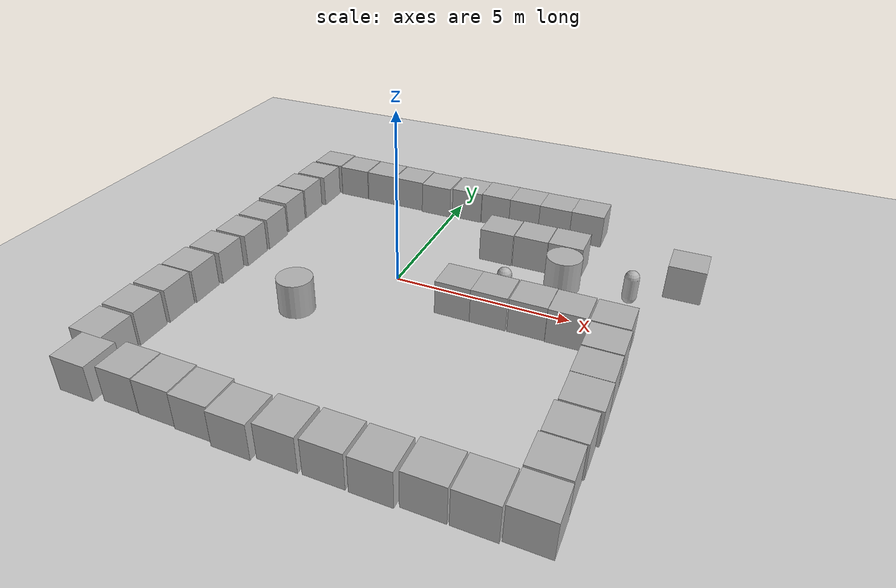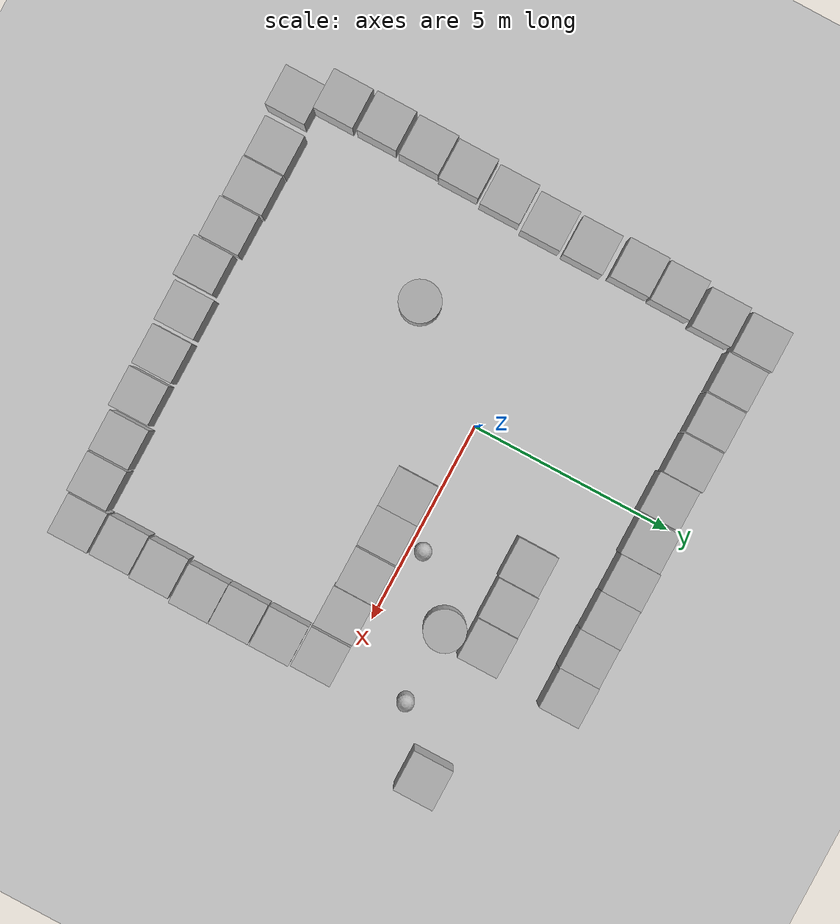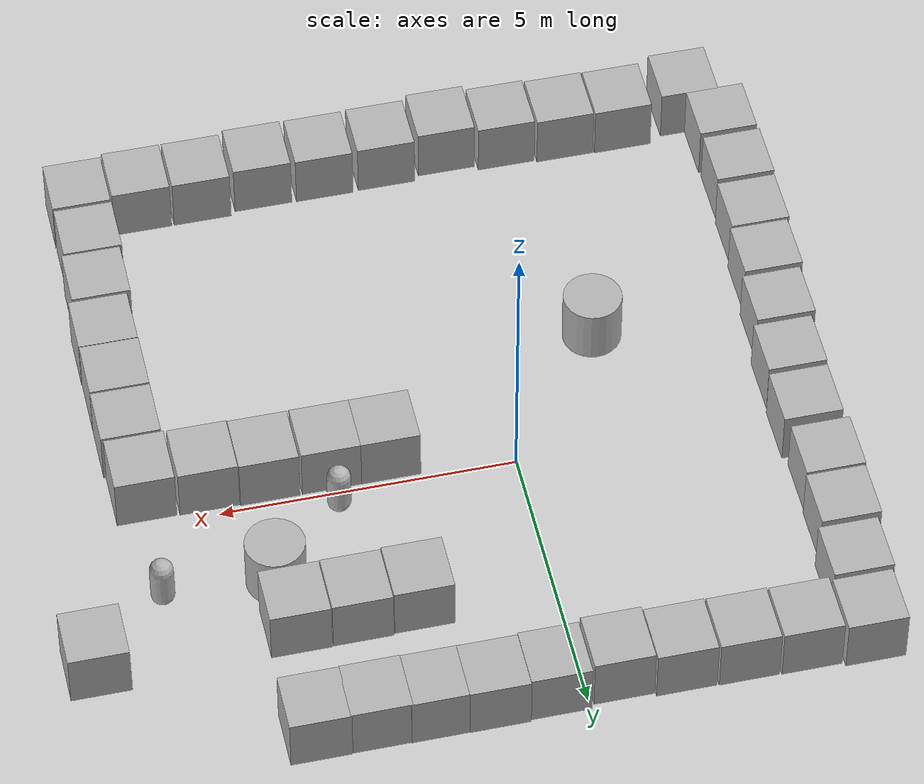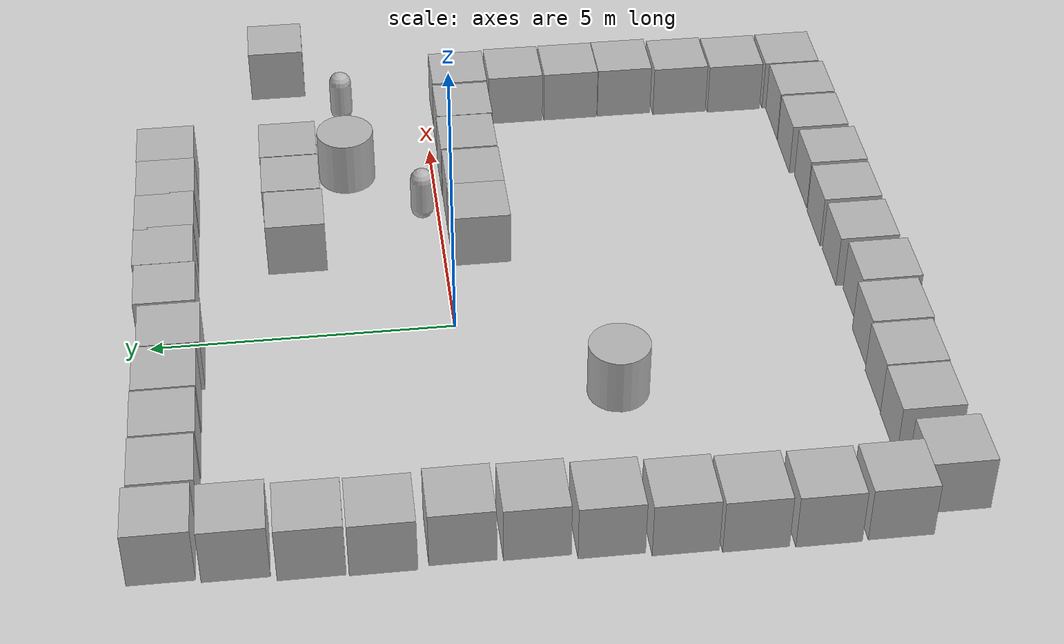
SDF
<sdf version='1.9'>
  <world name='empty'>
    <physics name='1ms' type='ignored'>
      <max_step_size>0.001</max_step_size>
      <real_time_factor>1</real_time_factor>
      <real_time_update_rate>1000</real_time_update_rate>
    </physics>
    <plugin name='gz::sim::systems::Physics' filename='ignition-gazebo-physics-system'/>
    <plugin name='gz::sim::systems::UserCommands' filename='ignition-gazebo-user-commands-system'/>
    <plugin name='gz::sim::systems::SceneBroadcaster' filename='ignition-gazebo-scene-broadcaster-system'/>
    <plugin name='gz::sim::systems::Contact' filename='ignition-gazebo-contact-system'/>
    <gravity>0 0 -9.8</gravity>
    <magnetic_field>6e-06 2.3e-05 -4.2e-05</magnetic_field>
    <atmosphere type='adiabatic'/>
    <scene>
      <ambient>0.4 0.4 0.4 1</ambient>
      <background>0.7 0.7 0.7 1</background>
      <shadows>true</shadows>
    </scene>
    <model name='ground_plane'>
      <static>true</static>
      <link name='link'>
        <collision name='collision'>
          <geometry>
            <plane>
              <normal>0 0 1</normal>
              <size>100 100</size>
            </plane>
          </geometry>
          <surface>
            <friction>
              <ode/>
            </friction>
            <bounce/>
            <contact/>
          </surface>
        </collision>
        <visual name='visual'>
          <geometry>
            <plane>
              <normal>0 0 1</normal>
              <size>100 100</size>
            </plane>
          </geometry>
          <material>
            <ambient>0.8 0.8 0.8 1</ambient>
            <diffuse>0.8 0.8 0.8 1</diffuse>
            <specular>0.8 0.8 0.8 1</specular>
          </material>
        </visual>
        <pose>0 0 0 0 -0 0</pose>
        <inertial>
          <pose>0 0 0 0 -0 0</pose>
          <mass>1</mass>
          <inertia>
            <ixx>1</ixx>
            <ixy>0</ixy>
            <ixz>0</ixz>
            <iyy>1</iyy>
            <iyz>0</iyz>
            <izz>1</izz>
          </inertia>
        </inertial>
        <enable_wind>false</enable_wind>
      </link>
      <pose>0 0 0 0 -0 0</pose>
      <self_collide>false</self_collide>
    </model>
    <model name='box'>
      <pose>4.25716 2.56515 0.5 0 -0 0</pose>
      <link name='box_link'>
        <inertial>
          <inertia>
            <ixx>0.16666</ixx>
            <ixy>0</ixy>
            <ixz>0</ixz>
            <iyy>0.16666</iyy>
            <iyz>0</iyz>
            <izz>0.16666</izz>
          </inertia>
          <mass>1</mass>
          <pose>0 0 0 0 -0 0</pose>
        </inertial>
        <collision name='box_collision'>
          <geometry>
            <box>
              <size>1 1 1</size>
            </box>
          </geometry>
          <surface>
            <friction>
              <ode/>
            </friction>
            <bounce/>
            <contact/>
          </surface>
        </collision>
        <visual name='box_visual'>
          <geometry>
            <box>
              <size>1 1 1</size>
            </box>
          </geometry>
          <material>
            <ambient>0.3 0.3 0.3 1</ambient>
            <diffuse>0.7 0.7 0.7 1</diffuse>
            <specular>1 1 1 1</specular>
          </material>
        </visual>
        <pose>0 0 0 0 -0 0</pose>
        <enable_wind>false</enable_wind>
      </link>
      <static>false</static>
      <self_collide>false</self_collide>
    </model>
    <model name='box_0'>
      <pose>2.22508 2.52242 0.5 0 -0 0</pose>
      <link name='box_link'>
        <inertial>
          <inertia>
            <ixx>0.16666</ixx>
            <ixy>0</ixy>
            <ixz>0</ixz>
            <iyy>0.16666</iyy>
            <iyz>0</iyz>
            <izz>0.16666</izz>
          </inertia>
          <mass>1</mass>
          <pose>0 0 0 0 -0 0</pose>
        </inertial>
        <collision name='box_collision'>
          <geometry>
            <box>
              <size>1 1 1</size>
            </box>
          </geometry>
          <surface>
            <friction>
              <ode/>
            </friction>
            <bounce/>
            <contact/>
          </surface>
        </collision>
        <visual name='box_visual'>
          <geometry>
            <box>
              <size>1 1 1</size>
            </box>
          </geometry>
          <material>
            <ambient>0.3 0.3 0.3 1</ambient>
            <diffuse>0.7 0.7 0.7 1</diffuse>
            <specular>1 1 1 1</specular>
          </material>
        </visual>
        <pose>0 0 0 0 -0 0</pose>
        <enable_wind>false</enable_wind>
      </link>
      <static>false</static>
      <self_collide>false</self_collide>
    </model>
    <model name='box_1'>
      <pose>3.24121 2.55344 0.5 0 -0 0</pose>
      <link name='box_link'>
        <inertial>
          <inertia>
            <ixx>0.16666</ixx>
            <ixy>0</ixy>
            <ixz>0</ixz>
            <iyy>0.16666</iyy>
            <iyz>0</iyz>
            <izz>0.16666</izz>
          </inertia>
          <mass>1</mass>
          <pose>0 0 0 0 -0 0</pose>
        </inertial>
        <collision name='box_collision'>
          <geometry>
            <box>
              <size>1 1 1</size>
            </box>
          </geometry>
          <surface>
            <friction>
              <ode/>
            </friction>
            <bounce/>
            <contact/>
          </surface>
        </collision>
        <visual name='box_visual'>
          <geometry>
            <box>
              <size>1 1 1</size>
            </box>
          </geometry>
          <material>
            <ambient>0.3 0.3 0.3 1</ambient>
            <diffuse>0.7 0.7 0.7 1</diffuse>
            <specular>1 1 1 1</specular>
          </material>
        </visual>
        <pose>0 0 0 0 -0 0</pose>
        <enable_wind>false</enable_wind>
      </link>
      <static>false</static>
      <self_collide>false</self_collide>
    </model>
    <model name='box_2'>
      <pose>4.13558 -0.610376 0.5 0 -0 0</pose>
      <link name='box_link'>
        <inertial>
          <inertia>
            <ixx>0.16666</ixx>
            <ixy>0</ixy>
            <ixz>0</ixz>
            <iyy>0.16666</iyy>
            <iyz>0</iyz>
            <izz>0.16666</izz>
          </inertia>
          <mass>1</mass>
          <pose>0 0 0 0 -0 0</pose>
        </inertial>
        <collision name='box_collision'>
          <geometry>
            <box>
              <size>1 1 1</size>
            </box>
          </geometry>
          <surface>
            <friction>
              <ode/>
            </friction>
            <bounce/>
            <contact/>
          </surface>
        </collision>
        <visual name='box_visual'>
          <geometry>
            <box>
              <size>1 1 1</size>
            </box>
          </geometry>
          <material>
            <ambient>0.3 0.3 0.3 1</ambient>
            <diffuse>0.7 0.7 0.7 1</diffuse>
            <specular>1 1 1 1</specular>
          </material>
        </visual>
        <pose>0 0 0 0 -0 0</pose>
        <enable_wind>false</enable_wind>
      </link>
      <static>false</static>
      <self_collide>false</self_collide>
    </model>
    <model name='box_3'>
      <pose>5.14532 -0.630315 0.5 0 -0 0</pose>
      <link name='box_link'>
        <inertial>
          <inertia>
            <ixx>0.16666</ixx>
            <ixy>0</ixy>
            <ixz>0</ixz>
            <iyy>0.16666</iyy>
            <iyz>0</iyz>
            <izz>0.16666</izz>
          </inertia>
          <mass>1</mass>
          <pose>0 0 0 0 -0 0</pose>
        </inertial>
        <collision name='box_collision'>
          <geometry>
            <box>
              <size>1 1 1</size>
            </box>
          </geometry>
          <surface>
            <friction>
              <ode/>
            </friction>
            <bounce/>
            <contact/>
          </surface>
        </collision>
        <visual name='box_visual'>
          <geometry>
            <box>
              <size>1 1 1</size>
            </box>
          </geometry>
          <material>
            <ambient>0.3 0.3 0.3 1</ambient>
            <diffuse>0.7 0.7 0.7 1</diffuse>
            <specular>1 1 1 1</specular>
          </material>
        </visual>
        <pose>0 0 0 0 -0 0</pose>
        <enable_wind>false</enable_wind>
      </link>
      <static>false</static>
      <self_collide>false</self_collide>
    </model>
    <model name='box_4'>
      <pose>6.19145 -0.640033 0.5 0 -0 0</pose>
      <link name='box_link'>
        <inertial>
          <inertia>
            <ixx>0.16666</ixx>
            <ixy>0</ixy>
            <ixz>0</ixz>
            <iyy>0.16666</iyy>
            <iyz>0</iyz>
            <izz>0.16666</izz>
          </inertia>
          <mass>1</mass>
          <pose>0 0 0 0 -0 0</pose>
        </inertial>
        <collision name='box_collision'>
          <geometry>
            <box>
              <size>1 1 1</size>
            </box>
          </geometry>
          <surface>
            <friction>
              <ode/>
            </friction>
            <bounce/>
            <contact/>
          </surface>
        </collision>
        <visual name='box_visual'>
          <geometry>
            <box>
              <size>1 1 1</size>
            </box>
          </geometry>
          <material>
            <ambient>0.3 0.3 0.3 1</ambient>
            <diffuse>0.7 0.7 0.7 1</diffuse>
            <specular>1 1 1 1</specular>
          </material>
        </visual>
        <pose>0 0 0 0 -0 0</pose>
        <enable_wind>false</enable_wind>
      </link>
      <static>false</static>
      <self_collide>false</self_collide>
    </model>
    <model name='box_5'>
      <pose>6.22858 -1.6771 0.5 0 -0 0</pose>
      <link name='box_link'>
        <inertial>
          <inertia>
            <ixx>0.16666</ixx>
            <ixy>0</ixy>
            <ixz>0</ixz>
            <iyy>0.16666</iyy>
            <iyz>0</iyz>
            <izz>0.16666</izz>
          </inertia>
          <mass>1</mass>
          <pose>0 0 0 0 -0 0</pose>
        </inertial>
        <collision name='box_collision'>
          <geometry>
            <box>
              <size>1 1 1</size>
            </box>
          </geometry>
          <surface>
            <friction>
              <ode/>
            </friction>
            <bounce/>
            <contact/>
          </surface>
        </collision>
        <visual name='box_visual'>
          <geometry>
            <box>
              <size>1 1 1</size>
            </box>
          </geometry>
          <material>
            <ambient>0.3 0.3 0.3 1</ambient>
            <diffuse>0.7 0.7 0.7 1</diffuse>
            <specular>1 1 1 1</specular>
          </material>
        </visual>
        <pose>0 0 0 0 -0 0</pose>
        <enable_wind>false</enable_wind>
      </link>
      <static>false</static>
      <self_collide>false</self_collide>
    </model>
    <model name='box_6'>
      <pose>6.22858 -2.70771 0.5 0 -0 0</pose>
      <link name='box_link'>
        <inertial>
          <inertia>
            <ixx>0.16666</ixx>
            <ixy>0</ixy>
            <ixz>0</ixz>
            <iyy>0.16666</iyy>
            <iyz>0</iyz>
            <izz>0.16666</izz>
          </inertia>
          <mass>1</mass>
          <pose>0 0 0 0 -0 0</pose>
        </inertial>
        <collision name='box_collision'>
          <geometry>
            <box>
              <size>1 1 1</size>
            </box>
          </geometry>
          <surface>
            <friction>
              <ode/>
            </friction>
            <bounce/>
            <contact/>
          </surface>
        </collision>
        <visual name='box_visual'>
          <geometry>
            <box>
              <size>1 1 1</size>
            </box>
          </geometry>
          <material>
            <ambient>0.3 0.3 0.3 1</ambient>
            <diffuse>0.7 0.7 0.7 1</diffuse>
            <specular>1 1 1 1</specular>
          </material>
        </visual>
        <pose>0 0 0 0 -0 0</pose>
        <enable_wind>false</enable_wind>
      </link>
      <static>false</static>
      <self_collide>false</self_collide>
    </model>
    <model name='box_7'>
      <pose>6.23565 -3.7182 0.5 0 -0 0</pose>
      <link name='box_link'>
        <inertial>
          <inertia>
            <ixx>0.16666</ixx>
            <ixy>0</ixy>
            <ixz>0</ixz>
            <iyy>0.16666</iyy>
            <iyz>0</iyz>
            <izz>0.16666</izz>
          </inertia>
          <mass>1</mass>
          <pose>0 0 0 0 -0 0</pose>
        </inertial>
        <collision name='box_collision'>
          <geometry>
            <box>
              <size>1 1 1</size>
            </box>
          </geometry>
          <surface>
            <friction>
              <ode/>
            </friction>
            <bounce/>
            <contact/>
          </surface>
        </collision>
        <visual name='box_visual'>
          <geometry>
            <box>
              <size>1 1 1</size>
            </box>
          </geometry>
          <material>
            <ambient>0.3 0.3 0.3 1</ambient>
            <diffuse>0.7 0.7 0.7 1</diffuse>
            <specular>1 1 1 1</specular>
          </material>
        </visual>
        <pose>0 0 0 0 -0 0</pose>
        <enable_wind>false</enable_wind>
      </link>
      <static>false</static>
      <self_collide>false</self_collide>
    </model>
    <model name='box_8'>
      <pose>6.1657 -4.7642 0.5 0 -0 0</pose>
      <link name='box_link'>
        <inertial>
          <inertia>
            <ixx>0.16666</ixx>
            <ixy>0</ixy>
            <ixz>0</ixz>
            <iyy>0.16666</iyy>
            <iyz>0</iyz>
            <izz>0.16666</izz>
          </inertia>
          <mass>1</mass>
          <pose>0 0 0 0 -0 0</pose>
        </inertial>
        <collision name='box_collision'>
          <geometry>
            <box>
              <size>1 1 1</size>
            </box>
          </geometry>
          <surface>
            <friction>
              <ode/>
            </friction>
            <bounce/>
            <contact/>
          </surface>
        </collision>
        <visual name='box_visual'>
          <geometry>
            <box>
              <size>1 1 1</size>
            </box>
          </geometry>
          <material>
            <ambient>0.3 0.3 0.3 1</ambient>
            <diffuse>0.7 0.7 0.7 1</diffuse>
            <specular>1 1 1 1</specular>
          </material>
        </visual>
        <pose>0 0 0 0 -0 0</pose>
        <enable_wind>false</enable_wind>
      </link>
      <static>false</static>
      <self_collide>false</self_collide>
    </model>
    <model name='box_9'>
      <pose>4.37528 4.70751 0.5 0 -0 0</pose>
      <link name='box_link'>
        <inertial>
          <inertia>
            <ixx>0.16666</ixx>
            <ixy>0</ixy>
            <ixz>0</ixz>
            <iyy>0.16666</iyy>
            <iyz>0</iyz>
            <izz>0.16666</izz>
          </inertia>
          <mass>1</mass>
          <pose>0 0 0 0 -0 0</pose>
        </inertial>
        <collision name='box_collision'>
          <geometry>
            <box>
              <size>1 1 1</size>
            </box>
          </geometry>
          <surface>
            <friction>
              <ode/>
            </friction>
            <bounce/>
            <contact/>
          </surface>
        </collision>
        <visual name='box_visual'>
          <geometry>
            <box>
              <size>1 1 1</size>
            </box>
          </geometry>
          <material>
            <ambient>0.3 0.3 0.3 1</ambient>
            <diffuse>0.7 0.7 0.7 1</diffuse>
            <specular>1 1 1 1</specular>
          </material>
        </visual>
        <pose>0 0 0 0 -0 0</pose>
        <enable_wind>false</enable_wind>
      </link>
      <static>false</static>
      <self_collide>false</self_collide>
    </model>
    <model name='box_10'>
      <pose>3.38964 4.69584 0.5 0 -0 0</pose>
      <link name='box_link'>
        <inertial>
          <inertia>
            <ixx>0.16666</ixx>
            <ixy>0</ixy>
            <ixz>0</ixz>
            <iyy>0.16666</iyy>
            <iyz>0</iyz>
            <izz>0.16666</izz>
          </inertia>
          <mass>1</mass>
          <pose>0 0 0 0 -0 0</pose>
        </inertial>
        <collision name='box_collision'>
          <geometry>
            <box>
              <size>1 1 1</size>
            </box>
          </geometry>
          <surface>
            <friction>
              <ode/>
            </friction>
            <bounce/>
            <contact/>
          </surface>
        </collision>
        <visual name='box_visual'>
          <geometry>
            <box>
              <size>1 1 1</size>
            </box>
          </geometry>
          <material>
            <ambient>0.3 0.3 0.3 1</ambient>
            <diffuse>0.7 0.7 0.7 1</diffuse>
            <specular>1 1 1 1</specular>
          </material>
        </visual>
        <pose>0 0 0 0 -0 0</pose>
        <enable_wind>false</enable_wind>
      </link>
      <static>false</static>
      <self_collide>false</self_collide>
    </model>
    <model name='box_11'>
      <pose>2.41973 4.70516 0.5 0 -0 0</pose>
      <link name='box_link'>
        <inertial>
          <inertia>
            <ixx>0.16666</ixx>
            <ixy>0</ixy>
            <ixz>0</ixz>
            <iyy>0.16666</iyy>
            <iyz>0</iyz>
            <izz>0.16666</izz>
          </inertia>
          <mass>1</mass>
          <pose>0 0 0 0 -0 0</pose>
        </inertial>
        <collision name='box_collision'>
          <geometry>
            <box>
              <size>1 1 1</size>
            </box>
          </geometry>
          <surface>
            <friction>
              <ode/>
            </friction>
            <bounce/>
            <contact/>
          </surface>
        </collision>
        <visual name='box_visual'>
          <geometry>
            <box>
              <size>1 1 1</size>
            </box>
          </geometry>
          <material>
            <ambient>0.3 0.3 0.3 1</ambient>
            <diffuse>0.7 0.7 0.7 1</diffuse>
            <specular>1 1 1 1</specular>
          </material>
        </visual>
        <pose>0 0 0 0 -0 0</pose>
        <enable_wind>false</enable_wind>
      </link>
      <static>false</static>
      <self_collide>false</self_collide>
    </model>
    <model name='box_12'>
      <pose>1.47803 4.71205 0.5 0 -0 0</pose>
      <link name='box_link'>
        <inertial>
          <inertia>
            <ixx>0.16666</ixx>
            <ixy>0</ixy>
            <ixz>0</ixz>
            <iyy>0.16666</iyy>
            <iyz>0</iyz>
            <izz>0.16666</izz>
          </inertia>
          <mass>1</mass>
          <pose>0 0 0 0 -0 0</pose>
        </inertial>
        <collision name='box_collision'>
          <geometry>
            <box>
              <size>1 1 1</size>
            </box>
          </geometry>
          <surface>
            <friction>
              <ode/>
            </friction>
            <bounce/>
            <contact/>
          </surface>
        </collision>
        <visual name='box_visual'>
          <geometry>
            <box>
              <size>1 1 1</size>
            </box>
          </geometry>
          <material>
            <ambient>0.3 0.3 0.3 1</ambient>
            <diffuse>0.7 0.7 0.7 1</diffuse>
            <specular>1 1 1 1</specular>
          </material>
        </visual>
        <pose>0 0 0 0 -0 0</pose>
        <enable_wind>false</enable_wind>
      </link>
      <static>false</static>
      <self_collide>false</self_collide>
    </model>
    <model name='box_13'>
      <pose>0.474826 4.68056 0.5 0 -0 0</pose>
      <link name='box_link'>
        <inertial>
          <inertia>
            <ixx>0.16666</ixx>
            <ixy>0</ixy>
            <ixz>0</ixz>
            <iyy>0.16666</iyy>
            <iyz>0</iyz>
            <izz>0.16666</izz>
          </inertia>
          <mass>1</mass>
          <pose>0 0 0 0 -0 0</pose>
        </inertial>
        <collision name='box_collision'>
          <geometry>
            <box>
              <size>1 1 1</size>
            </box>
          </geometry>
          <surface>
            <friction>
              <ode/>
            </friction>
            <bounce/>
            <contact/>
          </surface>
        </collision>
        <visual name='box_visual'>
          <geometry>
            <box>
              <size>1 1 1</size>
            </box>
          </geometry>
          <material>
            <ambient>0.3 0.3 0.3 1</ambient>
            <diffuse>0.7 0.7 0.7 1</diffuse>
            <specular>1 1 1 1</specular>
          </material>
        </visual>
        <pose>0 0 0 0 -0 0</pose>
        <enable_wind>false</enable_wind>
      </link>
      <static>false</static>
      <self_collide>false</self_collide>
    </model>
    <model name='box_14'>
      <pose>-0.571616 4.60503 0.5 0 -0 0</pose>
      <link name='box_link'>
        <inertial>
          <inertia>
            <ixx>0.16666</ixx>
            <ixy>0</ixy>
            <ixz>0</ixz>
            <iyy>0.16666</iyy>
            <iyz>0</iyz>
            <izz>0.16666</izz>
          </inertia>
          <mass>1</mass>
          <pose>0 0 0 0 -0 0</pose>
        </inertial>
        <collision name='box_collision'>
          <geometry>
            <box>
              <size>1 1 1</size>
            </box>
          </geometry>
          <surface>
            <friction>
              <ode/>
            </friction>
            <bounce/>
            <contact/>
          </surface>
        </collision>
        <visual name='box_visual'>
          <geometry>
            <box>
              <size>1 1 1</size>
            </box>
          </geometry>
          <material>
            <ambient>0.3 0.3 0.3 1</ambient>
            <diffuse>0.7 0.7 0.7 1</diffuse>
            <specular>1 1 1 1</specular>
          </material>
        </visual>
        <pose>0 0 0 0 -0 0</pose>
        <enable_wind>false</enable_wind>
      </link>
      <static>false</static>
      <self_collide>false</self_collide>
    </model>
    <model name='box_15'>
      <pose>-1.58468 4.66608 0.5 0 -0 0</pose>
      <link name='box_link'>
        <inertial>
          <inertia>
            <ixx>0.16666</ixx>
            <ixy>0</ixy>
            <ixz>0</ixz>
            <iyy>0.16666</iyy>
            <iyz>0</iyz>
            <izz>0.16666</izz>
          </inertia>
          <mass>1</mass>
          <pose>0 0 0 0 -0 0</pose>
        </inertial>
        <collision name='box_collision'>
          <geometry>
            <box>
              <size>1 1 1</size>
            </box>
          </geometry>
          <surface>
            <friction>
              <ode/>
            </friction>
            <bounce/>
            <contact/>
          </surface>
        </collision>
        <visual name='box_visual'>
          <geometry>
            <box>
              <size>1 1 1</size>
            </box>
          </geometry>
          <material>
            <ambient>0.3 0.3 0.3 1</ambient>
            <diffuse>0.7 0.7 0.7 1</diffuse>
            <specular>1 1 1 1</specular>
          </material>
        </visual>
        <pose>0 0 0 0 -0 0</pose>
        <enable_wind>false</enable_wind>
      </link>
      <static>false</static>
      <self_collide>false</self_collide>
    </model>
    <model name='box_16'>
      <pose>-2.61521 4.67735 0.5 0 -0 0</pose>
      <link name='box_link'>
        <inertial>
          <inertia>
            <ixx>0.16666</ixx>
            <ixy>0</ixy>
            <ixz>0</ixz>
            <iyy>0.16666</iyy>
            <iyz>0</iyz>
            <izz>0.16666</izz>
          </inertia>
          <mass>1</mass>
          <pose>0 0 0 0 -0 0</pose>
        </inertial>
        <collision name='box_collision'>
          <geometry>
            <box>
              <size>1 1 1</size>
            </box>
          </geometry>
          <surface>
            <friction>
              <ode/>
            </friction>
            <bounce/>
            <contact/>
          </surface>
        </collision>
        <visual name='box_visual'>
          <geometry>
            <box>
              <size>1 1 1</size>
            </box>
          </geometry>
          <material>
            <ambient>0.3 0.3 0.3 1</ambient>
            <diffuse>0.7 0.7 0.7 1</diffuse>
            <specular>1 1 1 1</specular>
          </material>
        </visual>
        <pose>0 0 0 0 -0 0</pose>
        <enable_wind>false</enable_wind>
      </link>
      <static>false</static>
      <self_collide>false</self_collide>
    </model>
    <model name='box_17'>
      <pose>-3.64818 4.6887 0.5 0 -0 0</pose>
      <link name='box_link'>
        <inertial>
          <inertia>
            <ixx>0.16666</ixx>
            <ixy>0</ixy>
            <ixz>0</ixz>
            <iyy>0.16666</iyy>
            <iyz>0</iyz>
            <izz>0.16666</izz>
          </inertia>
          <mass>1</mass>
          <pose>0 0 0 0 -0 0</pose>
        </inertial>
        <collision name='box_collision'>
          <geometry>
            <box>
              <size>1 1 1</size>
            </box>
          </geometry>
          <surface>
            <friction>
              <ode/>
            </friction>
            <bounce/>
            <contact/>
          </surface>
        </collision>
        <visual name='box_visual'>
          <geometry>
            <box>
              <size>1 1 1</size>
            </box>
          </geometry>
          <material>
            <ambient>0.3 0.3 0.3 1</ambient>
            <diffuse>0.7 0.7 0.7 1</diffuse>
            <specular>1 1 1 1</specular>
          </material>
        </visual>
        <pose>0 0 0 0 -0 0</pose>
        <enable_wind>false</enable_wind>
      </link>
      <static>false</static>
      <self_collide>false</self_collide>
    </model>
    <model name='box_18'>
      <pose>-4.69033 4.75286 0.5 0 -0 0</pose>
      <link name='box_link'>
        <inertial>
          <inertia>
            <ixx>0.16666</ixx>
            <ixy>0</ixy>
            <ixz>0</ixz>
            <iyy>0.16666</iyy>
            <iyz>0</iyz>
            <izz>0.16666</izz>
          </inertia>
          <mass>1</mass>
          <pose>0 0 0 0 -0 0</pose>
        </inertial>
        <collision name='box_collision'>
          <geometry>
            <box>
              <size>1 1 1</size>
            </box>
          </geometry>
          <surface>
            <friction>
              <ode/>
            </friction>
            <bounce/>
            <contact/>
          </surface>
        </collision>
        <visual name='box_visual'>
          <geometry>
            <box>
              <size>1 1 1</size>
            </box>
          </geometry>
          <material>
            <ambient>0.3 0.3 0.3 1</ambient>
            <diffuse>0.7 0.7 0.7 1</diffuse>
            <specular>1 1 1 1</specular>
          </material>
        </visual>
        <pose>0 0 0 0 -0 0</pose>
        <enable_wind>false</enable_wind>
      </link>
      <static>false</static>
      <self_collide>false</self_collide>
    </model>
    <model name='box_19'>
      <pose>-4.74822 3.67565 0.5 0 -0 0</pose>
      <link name='box_link'>
        <inertial>
          <inertia>
            <ixx>0.16666</ixx>
            <ixy>0</ixy>
            <ixz>0</ixz>
            <iyy>0.16666</iyy>
            <iyz>0</iyz>
            <izz>0.16666</izz>
          </inertia>
          <mass>1</mass>
          <pose>0 0 0 0 -0 0</pose>
        </inertial>
        <collision name='box_collision'>
          <geometry>
            <box>
              <size>1 1 1</size>
            </box>
          </geometry>
          <surface>
            <friction>
              <ode/>
            </friction>
            <bounce/>
            <contact/>
          </surface>
        </collision>
        <visual name='box_visual'>
          <geometry>
            <box>
              <size>1 1 1</size>
            </box>
          </geometry>
          <material>
            <ambient>0.3 0.3 0.3 1</ambient>
            <diffuse>0.7 0.7 0.7 1</diffuse>
            <specular>1 1 1 1</specular>
          </material>
        </visual>
        <pose>0 0 0 0 -0 0</pose>
        <enable_wind>false</enable_wind>
      </link>
      <static>false</static>
      <self_collide>false</self_collide>
    </model>
    <model name='box_20'>
      <pose>-4.84161 2.58379 0.5 0 -0 0</pose>
      <link name='box_link'>
        <inertial>
          <inertia>
            <ixx>0.16666</ixx>
            <ixy>0</ixy>
            <ixz>0</ixz>
            <iyy>0.16666</iyy>
            <iyz>0</iyz>
            <izz>0.16666</izz>
          </inertia>
          <mass>1</mass>
          <pose>0 0 0 0 -0 0</pose>
        </inertial>
        <collision name='box_collision'>
          <geometry>
            <box>
              <size>1 1 1</size>
            </box>
          </geometry>
          <surface>
            <friction>
              <ode/>
            </friction>
            <bounce/>
            <contact/>
          </surface>
        </collision>
        <visual name='box_visual'>
          <geometry>
            <box>
              <size>1 1 1</size>
            </box>
          </geometry>
          <material>
            <ambient>0.3 0.3 0.3 1</ambient>
            <diffuse>0.7 0.7 0.7 1</diffuse>
            <specular>1 1 1 1</specular>
          </material>
        </visual>
        <pose>0 0 0 0 -0 0</pose>
        <enable_wind>false</enable_wind>
      </link>
      <static>false</static>
      <self_collide>false</self_collide>
    </model>
    <model name='box_21'>
      <pose>-4.86638 1.5426 0.5 0 -0 0</pose>
      <link name='box_link'>
        <inertial>
          <inertia>
            <ixx>0.16666</ixx>
            <ixy>0</ixy>
            <ixz>0</ixz>
            <iyy>0.16666</iyy>
            <iyz>0</iyz>
            <izz>0.16666</izz>
          </inertia>
          <mass>1</mass>
          <pose>0 0 0 0 -0 0</pose>
        </inertial>
        <collision name='box_collision'>
          <geometry>
            <box>
              <size>1 1 1</size>
            </box>
          </geometry>
          <surface>
            <friction>
              <ode/>
            </friction>
            <bounce/>
            <contact/>
          </surface>
        </collision>
        <visual name='box_visual'>
          <geometry>
            <box>
              <size>1 1 1</size>
            </box>
          </geometry>
          <material>
            <ambient>0.3 0.3 0.3 1</ambient>
            <diffuse>0.7 0.7 0.7 1</diffuse>
            <specular>1 1 1 1</specular>
          </material>
        </visual>
        <pose>0 0 0 0 -0 0</pose>
        <enable_wind>false</enable_wind>
      </link>
      <static>false</static>
      <self_collide>false</self_collide>
    </model>
    <model name='box_22'>
      <pose>-4.80389 0.380437 0.5 0 -0 0</pose>
      <link name='box_link'>
        <inertial>
          <inertia>
            <ixx>0.16666</ixx>
            <ixy>0</ixy>
            <ixz>0</ixz>
            <iyy>0.16666</iyy>
            <iyz>0</iyz>
            <izz>0.16666</izz>
          </inertia>
          <mass>1</mass>
          <pose>0 0 0 0 -0 0</pose>
        </inertial>
        <collision name='box_collision'>
          <geometry>
            <box>
              <size>1 1 1</size>
            </box>
          </geometry>
          <surface>
            <friction>
              <ode/>
            </friction>
            <bounce/>
            <contact/>
          </surface>
        </collision>
        <visual name='box_visual'>
          <geometry>
            <box>
              <size>1 1 1</size>
            </box>
          </geometry>
          <material>
            <ambient>0.3 0.3 0.3 1</ambient>
            <diffuse>0.7 0.7 0.7 1</diffuse>
            <specular>1 1 1 1</specular>
          </material>
        </visual>
        <pose>0 0 0 0 -0 0</pose>
        <enable_wind>false</enable_wind>
      </link>
      <static>false</static>
      <self_collide>false</self_collide>
    </model>
    <model name='box_23'>
      <pose>-4.83006 -0.710249 0.5 0 -0 0</pose>
      <link name='box_link'>
        <inertial>
          <inertia>
            <ixx>0.16666</ixx>
            <ixy>0</ixy>
            <ixz>0</ixz>
            <iyy>0.16666</iyy>
            <iyz>0</iyz>
            <izz>0.16666</izz>
          </inertia>
          <mass>1</mass>
          <pose>0 0 0 0 -0 0</pose>
        </inertial>
        <collision name='box_collision'>
          <geometry>
            <box>
              <size>1 1 1</size>
            </box>
          </geometry>
          <surface>
            <friction>
              <ode/>
            </friction>
            <bounce/>
            <contact/>
          </surface>
        </collision>
        <visual name='box_visual'>
          <geometry>
            <box>
              <size>1 1 1</size>
            </box>
          </geometry>
          <material>
            <ambient>0.3 0.3 0.3 1</ambient>
            <diffuse>0.7 0.7 0.7 1</diffuse>
            <specular>1 1 1 1</specular>
          </material>
        </visual>
        <pose>0 0 0 0 -0 0</pose>
        <enable_wind>false</enable_wind>
      </link>
      <static>false</static>
      <self_collide>false</self_collide>
    </model>
    <model name='box_24'>
      <pose>-4.92357 -1.79655 0.5 0 -0 0</pose>
      <link name='box_link'>
        <inertial>
          <inertia>
            <ixx>0.16666</ixx>
            <ixy>0</ixy>
            <ixz>0</ixz>
            <iyy>0.16666</iyy>
            <iyz>0</iyz>
            <izz>0.16666</izz>
          </inertia>
          <mass>1</mass>
          <pose>0 0 0 0 -0 0</pose>
        </inertial>
        <collision name='box_collision'>
          <geometry>
            <box>
              <size>1 1 1</size>
            </box>
          </geometry>
          <surface>
            <friction>
              <ode/>
            </friction>
            <bounce/>
            <contact/>
          </surface>
        </collision>
        <visual name='box_visual'>
          <geometry>
            <box>
              <size>1 1 1</size>
            </box>
          </geometry>
          <material>
            <ambient>0.3 0.3 0.3 1</ambient>
            <diffuse>0.7 0.7 0.7 1</diffuse>
            <specular>1 1 1 1</specular>
          </material>
        </visual>
        <pose>0 0 0 0 -0 0</pose>
        <enable_wind>false</enable_wind>
      </link>
      <static>false</static>
      <self_collide>false</self_collide>
    </model>
    <model name='box_25'>
      <pose>-4.99469 -2.88184 0.5 0 -0 0</pose>
      <link name='box_link'>
        <inertial>
          <inertia>
            <ixx>0.16666</ixx>
            <ixy>0</ixy>
            <ixz>0</ixz>
            <iyy>0.16666</iyy>
            <iyz>0</iyz>
            <izz>0.16666</izz>
          </inertia>
          <mass>1</mass>
          <pose>0 0 0 0 -0 0</pose>
        </inertial>
        <collision name='box_collision'>
          <geometry>
            <box>
              <size>1 1 1</size>
            </box>
          </geometry>
          <surface>
            <friction>
              <ode/>
            </friction>
            <bounce/>
            <contact/>
          </surface>
        </collision>
        <visual name='box_visual'>
          <geometry>
            <box>
              <size>1 1 1</size>
            </box>
          </geometry>
          <material>
            <ambient>0.3 0.3 0.3 1</ambient>
            <diffuse>0.7 0.7 0.7 1</diffuse>
            <specular>1 1 1 1</specular>
          </material>
        </visual>
        <pose>0 0 0 0 -0 0</pose>
        <enable_wind>false</enable_wind>
      </link>
      <static>false</static>
      <self_collide>false</self_collide>
    </model>
    <model name='box_26'>
      <pose>-5.04236 -3.92055 0.5 0 -0 0</pose>
      <link name='box_link'>
        <inertial>
          <inertia>
            <ixx>0.16666</ixx>
            <ixy>0</ixy>
            <ixz>0</ixz>
            <iyy>0.16666</iyy>
            <iyz>0</iyz>
            <izz>0.16666</izz>
          </inertia>
          <mass>1</mass>
          <pose>0 0 0 0 -0 0</pose>
        </inertial>
        <collision name='box_collision'>
          <geometry>
            <box>
              <size>1 1 1</size>
            </box>
          </geometry>
          <surface>
            <friction>
              <ode/>
            </friction>
            <bounce/>
            <contact/>
          </surface>
        </collision>
        <visual name='box_visual'>
          <geometry>
            <box>
              <size>1 1 1</size>
            </box>
          </geometry>
          <material>
            <ambient>0.3 0.3 0.3 1</ambient>
            <diffuse>0.7 0.7 0.7 1</diffuse>
            <specular>1 1 1 1</specular>
          </material>
        </visual>
        <pose>0 0 0 0 -0 0</pose>
        <enable_wind>false</enable_wind>
      </link>
      <static>false</static>
      <self_collide>false</self_collide>
    </model>
    <model name='box_27'>
      <pose>-5.06868 -5.00835 0.5 0 -0 0</pose>
      <link name='box_link'>
        <inertial>
          <inertia>
            <ixx>0.16666</ixx>
            <ixy>0</ixy>
            <ixz>0</ixz>
            <iyy>0.16666</iyy>
            <iyz>0</iyz>
            <izz>0.16666</izz>
          </inertia>
          <mass>1</mass>
          <pose>0 0 0 0 -0 0</pose>
        </inertial>
        <collision name='box_collision'>
          <geometry>
            <box>
              <size>1 1 1</size>
            </box>
          </geometry>
          <surface>
            <friction>
              <ode/>
            </friction>
            <bounce/>
            <contact/>
          </surface>
        </collision>
        <visual name='box_visual'>
          <geometry>
            <box>
              <size>1 1 1</size>
            </box>
          </geometry>
          <material>
            <ambient>0.3 0.3 0.3 1</ambient>
            <diffuse>0.7 0.7 0.7 1</diffuse>
            <specular>1 1 1 1</specular>
          </material>
        </visual>
        <pose>0 0 0 0 -0 0</pose>
        <enable_wind>false</enable_wind>
      </link>
      <static>false</static>
      <self_collide>false</self_collide>
    </model>
    <model name='box_28'>
      <pose>-5.0497 -6.10238 0.5 0 -0 0</pose>
      <link name='box_link'>
        <inertial>
          <inertia>
            <ixx>0.16666</ixx>
            <ixy>0</ixy>
            <ixz>0</ixz>
            <iyy>0.16666</iyy>
            <iyz>0</iyz>
            <izz>0.16666</izz>
          </inertia>
          <mass>1</mass>
          <pose>0 0 0 0 -0 0</pose>
        </inertial>
        <collision name='box_collision'>
          <geometry>
            <box>
              <size>1 1 1</size>
            </box>
          </geometry>
          <surface>
            <friction>
              <ode/>
            </friction>
            <bounce/>
            <contact/>
          </surface>
        </collision>
        <visual name='box_visual'>
          <geometry>
            <box>
              <size>1 1 1</size>
            </box>
          </geometry>
          <material>
            <ambient>0.3 0.3 0.3 1</ambient>
            <diffuse>0.7 0.7 0.7 1</diffuse>
            <specular>1 1 1 1</specular>
          </material>
        </visual>
        <pose>0 0 0 0 -0 0</pose>
        <enable_wind>false</enable_wind>
      </link>
      <static>false</static>
      <self_collide>false</self_collide>
    </model>
    <model name='box_29'>
      <pose>6.12407 -5.79524 0.5 0 -0 0</pose>
      <link name='box_link'>
        <inertial>
          <inertia>
            <ixx>0.16666</ixx>
            <ixy>0</ixy>
            <ixz>0</ixz>
            <iyy>0.16666</iyy>
            <iyz>0</iyz>
            <izz>0.16666</izz>
          </inertia>
          <mass>1</mass>
          <pose>0 0 0 0 -0 0</pose>
        </inertial>
        <collision name='box_collision'>
          <geometry>
            <box>
              <size>1 1 1</size>
            </box>
          </geometry>
          <surface>
            <friction>
              <ode/>
            </friction>
            <bounce/>
            <contact/>
          </surface>
        </collision>
        <visual name='box_visual'>
          <geometry>
            <box>
              <size>1 1 1</size>
            </box>
          </geometry>
          <material>
            <ambient>0.3 0.3 0.3 1</ambient>
            <diffuse>0.7 0.7 0.7 1</diffuse>
            <specular>1 1 1 1</specular>
          </material>
        </visual>
        <pose>0 0 0 0 -0 0</pose>
        <enable_wind>false</enable_wind>
      </link>
      <static>false</static>
      <self_collide>false</self_collide>
    </model>
    <model name='box_30'>
      <pose>6.13132 -6.8447 0.5 0 -0 0</pose>
      <link name='box_link'>
        <inertial>
          <inertia>
            <ixx>0.16666</ixx>
            <ixy>0</ixy>
            <ixz>0</ixz>
            <iyy>0.16666</iyy>
            <iyz>0</iyz>
            <izz>0.16666</izz>
          </inertia>
          <mass>1</mass>
          <pose>0 0 0 0 -0 0</pose>
        </inertial>
        <collision name='box_collision'>
          <geometry>
            <box>
              <size>1 1 1</size>
            </box>
          </geometry>
          <surface>
            <friction>
              <ode/>
            </friction>
            <bounce/>
            <contact/>
          </surface>
        </collision>
        <visual name='box_visual'>
          <geometry>
            <box>
              <size>1 1 1</size>
            </box>
          </geometry>
          <material>
            <ambient>0.3 0.3 0.3 1</ambient>
            <diffuse>0.7 0.7 0.7 1</diffuse>
            <specular>1 1 1 1</specular>
          </material>
        </visual>
        <pose>0 0 0 0 -0 0</pose>
        <enable_wind>false</enable_wind>
      </link>
      <static>false</static>
      <self_collide>false</self_collide>
    </model>
    <model name='box_31'>
      <pose>5.09836 -6.91237 0.5 0 -0 0</pose>
      <link name='box_link'>
        <inertial>
          <inertia>
            <ixx>0.16666</ixx>
            <ixy>0</ixy>
            <ixz>0</ixz>
            <iyy>0.16666</iyy>
            <iyz>0</iyz>
            <izz>0.16666</izz>
          </inertia>
          <mass>1</mass>
          <pose>0 0 0 0 -0 0</pose>
        </inertial>
        <collision name='box_collision'>
          <geometry>
            <box>
              <size>1 1 1</size>
            </box>
          </geometry>
          <surface>
            <friction>
              <ode/>
            </friction>
            <bounce/>
            <contact/>
          </surface>
        </collision>
        <visual name='box_visual'>
          <geometry>
            <box>
              <size>1 1 1</size>
            </box>
          </geometry>
          <material>
            <ambient>0.3 0.3 0.3 1</ambient>
            <diffuse>0.7 0.7 0.7 1</diffuse>
            <specular>1 1 1 1</specular>
          </material>
        </visual>
        <pose>0 0 0 0 -0 0</pose>
        <enable_wind>false</enable_wind>
      </link>
      <static>false</static>
      <self_collide>false</self_collide>
    </model>
    <model name='box_32'>
      <pose>4.05564 -6.91326 0.5 0 -0 0</pose>
      <link name='box_link'>
        <inertial>
          <inertia>
            <ixx>0.16666</ixx>
            <ixy>0</ixy>
            <ixz>0</ixz>
            <iyy>0.16666</iyy>
            <iyz>0</iyz>
            <izz>0.16666</izz>
          </inertia>
          <mass>1</mass>
          <pose>0 0 0 0 -0 0</pose>
        </inertial>
        <collision name='box_collision'>
          <geometry>
            <box>
              <size>1 1 1</size>
            </box>
          </geometry>
          <surface>
            <friction>
              <ode/>
            </friction>
            <bounce/>
            <contact/>
          </surface>
        </collision>
        <visual name='box_visual'>
          <geometry>
            <box>
              <size>1 1 1</size>
            </box>
          </geometry>
          <material>
            <ambient>0.3 0.3 0.3 1</ambient>
            <diffuse>0.7 0.7 0.7 1</diffuse>
            <specular>1 1 1 1</specular>
          </material>
        </visual>
        <pose>0 0 0 0 -0 0</pose>
        <enable_wind>false</enable_wind>
      </link>
      <static>false</static>
      <self_collide>false</self_collide>
    </model>
    <model name='box_33'>
      <pose>2.97347 -6.99341 0.5 0 -0 0</pose>
      <link name='box_link'>
        <inertial>
          <inertia>
            <ixx>0.16666</ixx>
            <ixy>0</ixy>
            <ixz>0</ixz>
            <iyy>0.16666</iyy>
            <iyz>0</iyz>
            <izz>0.16666</izz>
          </inertia>
          <mass>1</mass>
          <pose>0 0 0 0 -0 0</pose>
        </inertial>
        <collision name='box_collision'>
          <geometry>
            <box>
              <size>1 1 1</size>
            </box>
          </geometry>
          <surface>
            <friction>
              <ode/>
            </friction>
            <bounce/>
            <contact/>
          </surface>
        </collision>
        <visual name='box_visual'>
          <geometry>
            <box>
              <size>1 1 1</size>
            </box>
          </geometry>
          <material>
            <ambient>0.3 0.3 0.3 1</ambient>
            <diffuse>0.7 0.7 0.7 1</diffuse>
            <specular>1 1 1 1</specular>
          </material>
        </visual>
        <pose>0 0 0 0 -0 0</pose>
        <enable_wind>false</enable_wind>
      </link>
      <static>false</static>
      <self_collide>false</self_collide>
    </model>
    <model name='box_34'>
      <pose>1.89461 -6.98248 0.5 0 -0 0</pose>
      <link name='box_link'>
        <inertial>
          <inertia>
            <ixx>0.16666</ixx>
            <ixy>0</ixy>
            <ixz>0</ixz>
            <iyy>0.16666</iyy>
            <iyz>0</iyz>
            <izz>0.16666</izz>
          </inertia>
          <mass>1</mass>
          <pose>0 0 0 0 -0 0</pose>
        </inertial>
        <collision name='box_collision'>
          <geometry>
            <box>
              <size>1 1 1</size>
            </box>
          </geometry>
          <surface>
            <friction>
              <ode/>
            </friction>
            <bounce/>
            <contact/>
          </surface>
        </collision>
        <visual name='box_visual'>
          <geometry>
            <box>
              <size>1 1 1</size>
            </box>
          </geometry>
          <material>
            <ambient>0.3 0.3 0.3 1</ambient>
            <diffuse>0.7 0.7 0.7 1</diffuse>
            <specular>1 1 1 1</specular>
          </material>
        </visual>
        <pose>0 0 0 0 -0 0</pose>
        <enable_wind>false</enable_wind>
      </link>
      <static>false</static>
      <self_collide>false</self_collide>
    </model>
    <model name='box_35'>
      <pose>0.79959 -7.00351 0.5 0 -0 0</pose>
      <link name='box_link'>
        <inertial>
          <inertia>
            <ixx>0.16666</ixx>
            <ixy>0</ixy>
            <ixz>0</ixz>
            <iyy>0.16666</iyy>
            <iyz>0</iyz>
            <izz>0.16666</izz>
          </inertia>
          <mass>1</mass>
          <pose>0 0 0 0 -0 0</pose>
        </inertial>
        <collision name='box_collision'>
          <geometry>
            <box>
              <size>1 1 1</size>
            </box>
          </geometry>
          <surface>
            <friction>
              <ode/>
            </friction>
            <bounce/>
            <contact/>
          </surface>
        </collision>
        <visual name='box_visual'>
          <geometry>
            <box>
              <size>1 1 1</size>
            </box>
          </geometry>
          <material>
            <ambient>0.3 0.3 0.3 1</ambient>
            <diffuse>0.7 0.7 0.7 1</diffuse>
            <specular>1 1 1 1</specular>
          </material>
        </visual>
        <pose>0 0 0 0 -0 0</pose>
        <enable_wind>false</enable_wind>
      </link>
      <static>false</static>
      <self_collide>false</self_collide>
    </model>
    <model name='box_36'>
      <pose>-0.288194 -7.10821 0.5 0 -0 0</pose>
      <link name='box_link'>
        <inertial>
          <inertia>
            <ixx>0.16666</ixx>
            <ixy>0</ixy>
            <ixz>0</ixz>
            <iyy>0.16666</iyy>
            <iyz>0</iyz>
            <izz>0.16666</izz>
          </inertia>
          <mass>1</mass>
          <pose>0 0 0 0 -0 0</pose>
        </inertial>
        <collision name='box_collision'>
          <geometry>
            <box>
              <size>1 1 1</size>
            </box>
          </geometry>
          <surface>
            <friction>
              <ode/>
            </friction>
            <bounce/>
            <contact/>
          </surface>
        </collision>
        <visual name='box_visual'>
          <geometry>
            <box>
              <size>1 1 1</size>
            </box>
          </geometry>
          <material>
            <ambient>0.3 0.3 0.3 1</ambient>
            <diffuse>0.7 0.7 0.7 1</diffuse>
            <specular>1 1 1 1</specular>
          </material>
        </visual>
        <pose>0 0 0 0 -0 0</pose>
        <enable_wind>false</enable_wind>
      </link>
      <static>false</static>
      <self_collide>false</self_collide>
    </model>
    <model name='box_37'>
      <pose>-1.33272 -7.01143 0.5 0 -0 0</pose>
      <link name='box_link'>
        <inertial>
          <inertia>
            <ixx>0.16666</ixx>
            <ixy>0</ixy>
            <ixz>0</ixz>
            <iyy>0.16666</iyy>
            <iyz>0</iyz>
            <izz>0.16666</izz>
          </inertia>
          <mass>1</mass>
          <pose>0 0 0 0 -0 0</pose>
        </inertial>
        <collision name='box_collision'>
          <geometry>
            <box>
              <size>1 1 1</size>
            </box>
          </geometry>
          <surface>
            <friction>
              <ode/>
            </friction>
            <bounce/>
            <contact/>
          </surface>
        </collision>
        <visual name='box_visual'>
          <geometry>
            <box>
              <size>1 1 1</size>
            </box>
          </geometry>
          <material>
            <ambient>0.3 0.3 0.3 1</ambient>
            <diffuse>0.7 0.7 0.7 1</diffuse>
            <specular>1 1 1 1</specular>
          </material>
        </visual>
        <pose>0 0 0 0 -0 0</pose>
        <enable_wind>false</enable_wind>
      </link>
      <static>false</static>
      <self_collide>false</self_collide>
    </model>
    <model name='box_38'>
      <pose>-2.36921 -6.97202 0.5 0 -0 0</pose>
      <link name='box_link'>
        <inertial>
          <inertia>
            <ixx>0.16666</ixx>
            <ixy>0</ixy>
            <ixz>0</ixz>
            <iyy>0.16666</iyy>
            <iyz>0</iyz>
            <izz>0.16666</izz>
          </inertia>
          <mass>1</mass>
          <pose>0 0 0 0 -0 0</pose>
        </inertial>
        <collision name='box_collision'>
          <geometry>
            <box>
              <size>1 1 1</size>
            </box>
          </geometry>
          <surface>
            <friction>
              <ode/>
            </friction>
            <bounce/>
            <contact/>
          </surface>
        </collision>
        <visual name='box_visual'>
          <geometry>
            <box>
              <size>1 1 1</size>
            </box>
          </geometry>
          <material>
            <ambient>0.3 0.3 0.3 1</ambient>
            <diffuse>0.7 0.7 0.7 1</diffuse>
            <specular>1 1 1 1</specular>
          </material>
        </visual>
        <pose>0 0 0 0 -0 0</pose>
        <enable_wind>false</enable_wind>
      </link>
      <static>false</static>
      <self_collide>false</self_collide>
    </model>
    <model name='box_39'>
      <pose>-3.39624 -6.95954 0.5 0 -0 0</pose>
      <link name='box_link'>
        <inertial>
          <inertia>
            <ixx>0.16666</ixx>
            <ixy>0</ixy>
            <ixz>0</ixz>
            <iyy>0.16666</iyy>
            <iyz>0</iyz>
            <izz>0.16666</izz>
          </inertia>
          <mass>1</mass>
          <pose>0 0 0 0 -0 0</pose>
        </inertial>
        <collision name='box_collision'>
          <geometry>
            <box>
              <size>1 1 1</size>
            </box>
          </geometry>
          <surface>
            <friction>
              <ode/>
            </friction>
            <bounce/>
            <contact/>
          </surface>
        </collision>
        <visual name='box_visual'>
          <geometry>
            <box>
              <size>1 1 1</size>
            </box>
          </geometry>
          <material>
            <ambient>0.3 0.3 0.3 1</ambient>
            <diffuse>0.7 0.7 0.7 1</diffuse>
            <specular>1 1 1 1</specular>
          </material>
        </visual>
        <pose>0 0 0 0 -0 0</pose>
        <enable_wind>false</enable_wind>
      </link>
      <static>false</static>
      <self_collide>false</self_collide>
    </model>
    <model name='box_40'>
      <pose>-4.61406 -7.09221 0.5 0 -0 0</pose>
      <link name='box_link'>
        <inertial>
          <inertia>
            <ixx>0.16666</ixx>
            <ixy>0</ixy>
            <ixz>0</ixz>
            <iyy>0.16666</iyy>
            <iyz>0</iyz>
            <izz>0.16666</izz>
          </inertia>
          <mass>1</mass>
          <pose>0 0 0 0 -0 0</pose>
        </inertial>
        <collision name='box_collision'>
          <geometry>
            <box>
              <size>1 1 1</size>
            </box>
          </geometry>
          <surface>
            <friction>
              <ode/>
            </friction>
            <bounce/>
            <contact/>
          </surface>
        </collision>
        <visual name='box_visual'>
          <geometry>
            <box>
              <size>1 1 1</size>
            </box>
          </geometry>
          <material>
            <ambient>0.3 0.3 0.3 1</ambient>
            <diffuse>0.7 0.7 0.7 1</diffuse>
            <specular>1 1 1 1</specular>
          </material>
        </visual>
        <pose>0 0 0 0 -0 0</pose>
        <enable_wind>false</enable_wind>
      </link>
      <static>false</static>
      <self_collide>false</self_collide>
    </model>
    <model name='capsule'>
      <pose>6.234 1.53944 0.5 0 -0 0</pose>
      <link name='capsule_link'>
        <inertial>
          <inertia>
            <ixx>0.074153999999999998</ixx>
            <ixy>0</ixy>
            <ixz>0</ixz>
            <iyy>0.074153999999999998</iyy>
            <iyz>0</iyz>
            <izz>0.018769000000000001</izz>
          </inertia>
          <mass>1</mass>
          <pose>0 0 0 0 -0 0</pose>
        </inertial>
        <collision name='capsule_collision'>
          <geometry>
            <capsule>
              <radius>0.20000000000000001</radius>
              <length>0.59999999999999998</length>
            </capsule>
          </geometry>
          <surface>
            <friction>
              <ode/>
            </friction>
            <bounce/>
            <contact/>
          </surface>
        </collision>
        <visual name='capsule_visual'>
          <geometry>
            <capsule>
              <radius>0.20000000000000001</radius>
              <length>0.59999999999999998</length>
            </capsule>
          </geometry>
          <material>
            <ambient>0.3 0.3 0.3 1</ambient>
            <diffuse>0.7 0.7 0.7 1</diffuse>
            <specular>1 1 1 1</specular>
          </material>
        </visual>
        <pose>0 0 0 0 -0 0</pose>
        <enable_wind>false</enable_wind>
      </link>
      <static>false</static>
      <self_collide>false</self_collide>
    </model>
    <model name='capsule_0'>
      <pose>3.05556 0.282974 0.5 0 -0 0</pose>
      <link name='capsule_link'>
        <inertial>
          <inertia>
            <ixx>0.074153999999999998</ixx>
            <ixy>0</ixy>
            <ixz>0</ixz>
            <iyy>0.074153999999999998</iyy>
            <iyz>0</iyz>
            <izz>0.018769000000000001</izz>
          </inertia>
          <mass>1</mass>
          <pose>0 0 0 0 -0 0</pose>
        </inertial>
        <collision name='capsule_collision'>
          <geometry>
            <capsule>
              <radius>0.20000000000000001</radius>
              <length>0.59999999999999998</length>
            </capsule>
          </geometry>
          <surface>
            <friction>
              <ode/>
            </friction>
            <bounce/>
            <contact/>
          </surface>
        </collision>
        <visual name='capsule_visual'>
          <geometry>
            <capsule>
              <radius>0.20000000000000001</radius>
              <length>0.59999999999999998</length>
            </capsule>
          </geometry>
          <material>
            <ambient>0.3 0.3 0.3 1</ambient>
            <diffuse>0.7 0.7 0.7 1</diffuse>
            <specular>1 1 1 1</specular>
          </material>
        </visual>
        <pose>0 0 0 0 -0 0</pose>
        <enable_wind>false</enable_wind>
      </link>
      <static>false</static>
      <self_collide>false</self_collide>
    </model>
    <model name='box_41'>
      <pose>2.09974 -0.616018 0.5 0 -0 0</pose>
      <link name='box_link'>
        <inertial>
          <inertia>
            <ixx>0.16666</ixx>
            <ixy>0</ixy>
            <ixz>0</ixz>
            <iyy>0.16666</iyy>
            <iyz>0</iyz>
            <izz>0.16666</izz>
          </inertia>
          <mass>1</mass>
          <pose>0 0 0 0 -0 0</pose>
        </inertial>
        <collision name='box_collision'>
          <geometry>
            <box>
              <size>1 1 1</size>
            </box>
          </geometry>
          <surface>
            <friction>
              <ode/>
            </friction>
            <bounce/>
            <contact/>
          </surface>
        </collision>
        <visual name='box_visual'>
          <geometry>
            <box>
              <size>1 1 1</size>
            </box>
          </geometry>
          <material>
            <ambient>0.3 0.3 0.3 1</ambient>
            <diffuse>0.7 0.7 0.7 1</diffuse>
            <specular>1 1 1 1</specular>
          </material>
        </visual>
        <pose>0 0 0 0 -0 0</pose>
        <enable_wind>false</enable_wind>
      </link>
      <static>false</static>
      <self_collide>false</self_collide>
    </model>
    <model name='box_42'>
      <pose>3.0994 -0.616849 0.5 0 -0 0</pose>
      <link name='box_link'>
        <inertial>
          <inertia>
            <ixx>0.16666</ixx>
            <ixy>0</ixy>
            <ixz>0</ixz>
            <iyy>0.16666</iyy>
            <iyz>0</iyz>
            <izz>0.16666</izz>
          </inertia>
          <mass>1</mass>
          <pose>0 0 0 0 -0 0</pose>
        </inertial>
        <collision name='box_collision'>
          <geometry>
            <box>
              <size>1 1 1</size>
            </box>
          </geometry>
          <surface>
            <friction>
              <ode/>
            </friction>
            <bounce/>
            <contact/>
          </surface>
        </collision>
        <visual name='box_visual'>
          <geometry>
            <box>
              <size>1 1 1</size>
            </box>
          </geometry>
          <material>
            <ambient>0.3 0.3 0.3 1</ambient>
            <diffuse>0.7 0.7 0.7 1</diffuse>
            <specular>1 1 1 1</specular>
          </material>
        </visual>
        <pose>0 0 0 0 -0 0</pose>
        <enable_wind>false</enable_wind>
      </link>
      <static>false</static>
      <self_collide>false</self_collide>
    </model>
    <model name='cylinder'>
      <pose>-1.86891 -2.44097 0.485636 0 -0 0</pose>
      <link name='cylinder_link'>
        <inertial>
          <inertia>
            <ixx>0.14580000000000001</ixx>
            <ixy>0</ixy>
            <ixz>0</ixz>
            <iyy>0.14580000000000001</iyy>
            <iyz>0</iyz>
            <izz>0.125</izz>
          </inertia>
          <mass>1</mass>
          <pose>0 0 0 0 -0 0</pose>
        </inertial>
        <collision name='cylinder_collision'>
          <geometry>
            <cylinder>
              <radius>0.5</radius>
              <length>1</length>
            </cylinder>
          </geometry>
          <surface>
            <friction>
              <ode/>
            </friction>
            <bounce/>
            <contact/>
          </surface>
        </collision>
        <visual name='cylinder_visual'>
          <geometry>
            <cylinder>
              <radius>0.5</radius>
              <length>1</length>
            </cylinder>
          </geometry>
          <material>
            <ambient>0.3 0.3 0.3 1</ambient>
            <diffuse>0.7 0.7 0.7 1</diffuse>
            <specular>1 1 1 1</specular>
          </material>
        </visual>
        <pose>0 0 0 0 -0 0</pose>
        <enable_wind>false</enable_wind>
      </link>
      <static>false</static>
      <self_collide>false</self_collide>
    </model>
    <model name='box_43'>
      <pose>7.54578 2.70142 0.5 0 -0 0</pose>
      <link name='box_link'>
        <inertial>
          <inertia>
            <ixx>0.16666</ixx>
            <ixy>0</ixy>
            <ixz>0</ixz>
            <iyy>0.16666</iyy>
            <iyz>0</iyz>
            <izz>0.16666</izz>
          </inertia>
          <mass>1</mass>
          <pose>0 0 0 0 -0 0</pose>
        </inertial>
        <collision name='box_collision'>
          <geometry>
            <box>
              <size>1 1 1</size>
            </box>
          </geometry>
          <surface>
            <friction>
              <ode/>
            </friction>
            <bounce/>
            <contact/>
          </surface>
        </collision>
        <visual name='box_visual'>
          <geometry>
            <box>
              <size>1 1 1</size>
            </box>
          </geometry>
          <material>
            <ambient>0.3 0.3 0.3 1</ambient>
            <diffuse>0.7 0.7 0.7 1</diffuse>
            <specular>1 1 1 1</specular>
          </material>
        </visual>
        <pose>0 0 0 0 -0 0</pose>
        <enable_wind>false</enable_wind>
      </link>
      <static>false</static>
      <self_collide>false</self_collide>
    </model>
    <model name='cylinder_0'>
      <pose>4.36951 1.54265 0.5 0 -0 0</pose>
      <link name='cylinder_link'>
        <inertial>
          <inertia>
            <ixx>0.14580000000000001</ixx>
            <ixy>0</ixy>
            <ixz>0</ixz>
            <iyy>0.14580000000000001</iyy>
            <iyz>0</iyz>
            <izz>0.125</izz>
          </inertia>
          <mass>1</mass>
          <pose>0 0 0 0 -0 0</pose>
        </inertial>
        <collision name='cylinder_collision'>
          <geometry>
            <cylinder>
              <radius>0.5</radius>
              <length>1</length>
            </cylinder>
          </geometry>
          <surface>
            <friction>
              <ode/>
            </friction>
            <bounce/>
            <contact/>
          </surface>
        </collision>
        <visual name='cylinder_visual'>
          <geometry>
            <cylinder>
              <radius>0.5</radius>
              <length>1</length>
            </cylinder>
          </geometry>
          <material>
            <ambient>0.3 0.3 0.3 1</ambient>
            <diffuse>0.7 0.7 0.7 1</diffuse>
            <specular>1 1 1 1</specular>
          </material>
        </visual>
        <pose>0 0 0 0 -0 0</pose>
        <enable_wind>false</enable_wind>
      </link>
      <static>false</static>
      <self_collide>false</self_collide>
    </model>
    <light name='sun' type='directional'>
      <pose>0 0 10 0 -0 0</pose>
      <cast_shadows>true</cast_shadows>
      <intensity>1</intensity>
      <direction>-0.5 0.1 -0.9</direction>
      <diffuse>0.8 0.8 0.8 1</diffuse>
      <specular>0.2 0.2 0.2 1</specular>
      <attenuation>
        <range>1000</range>
        <linear>0.01</linear>
        <constant>0.90000000000000002</constant>
        <quadratic>0.001</quadratic>
      </attenuation>
      <spot>
        <inner_angle>0</inner_angle>
        <outer_angle>0</outer_angle>
        <falloff>0</falloff>
      </spot>
    </light>
  </world>
</sdf>
